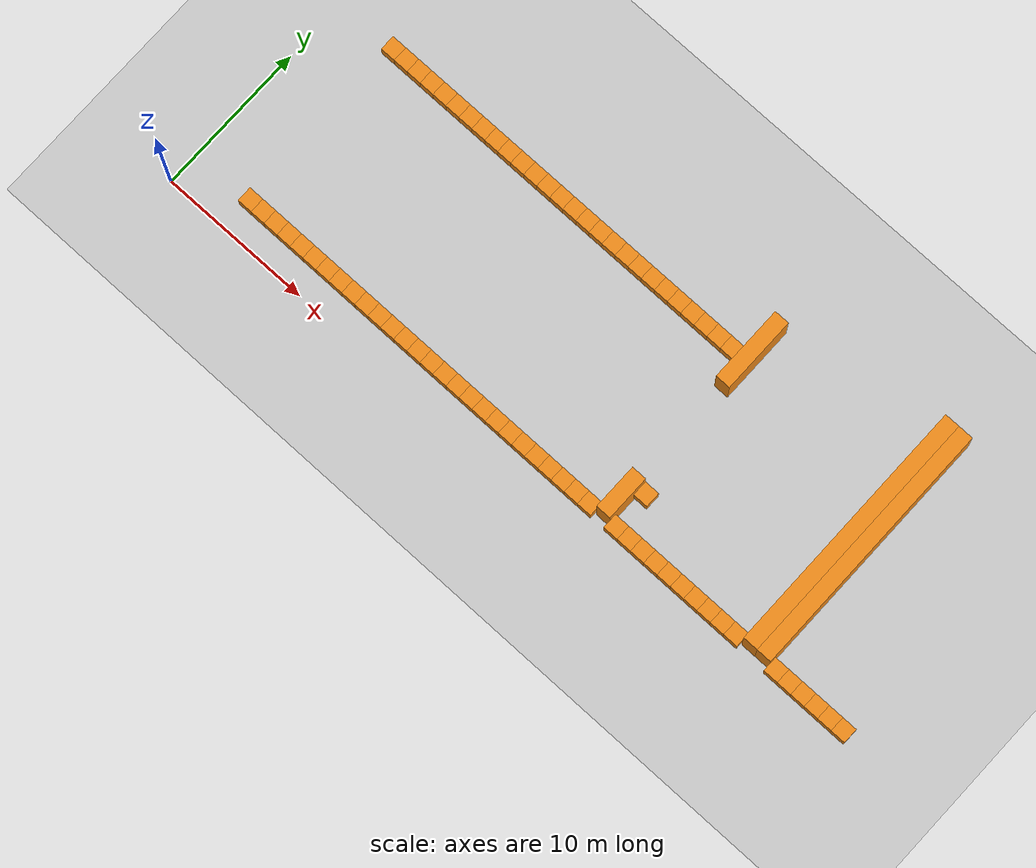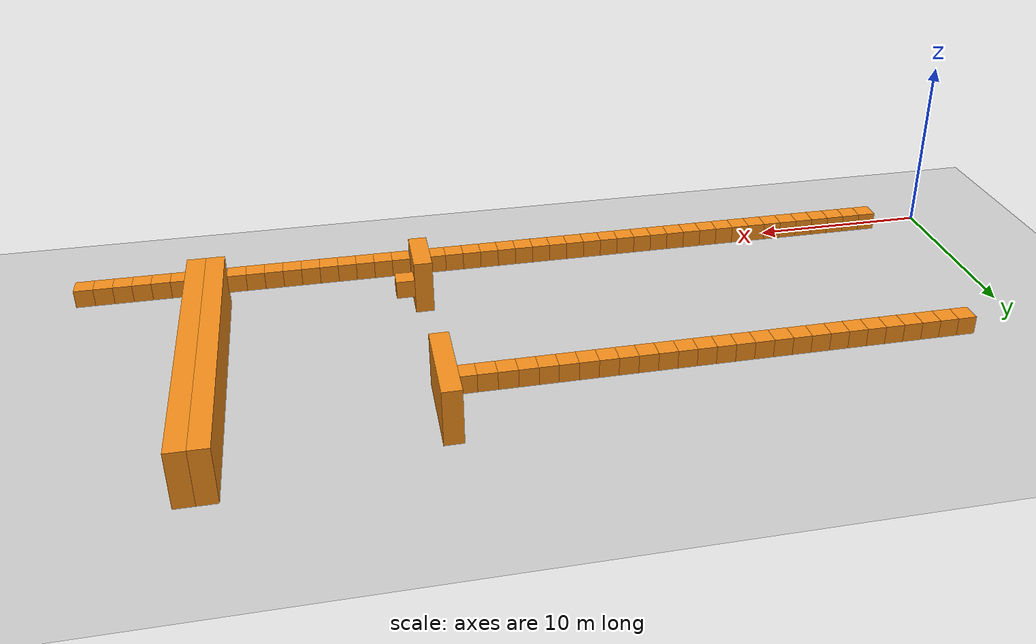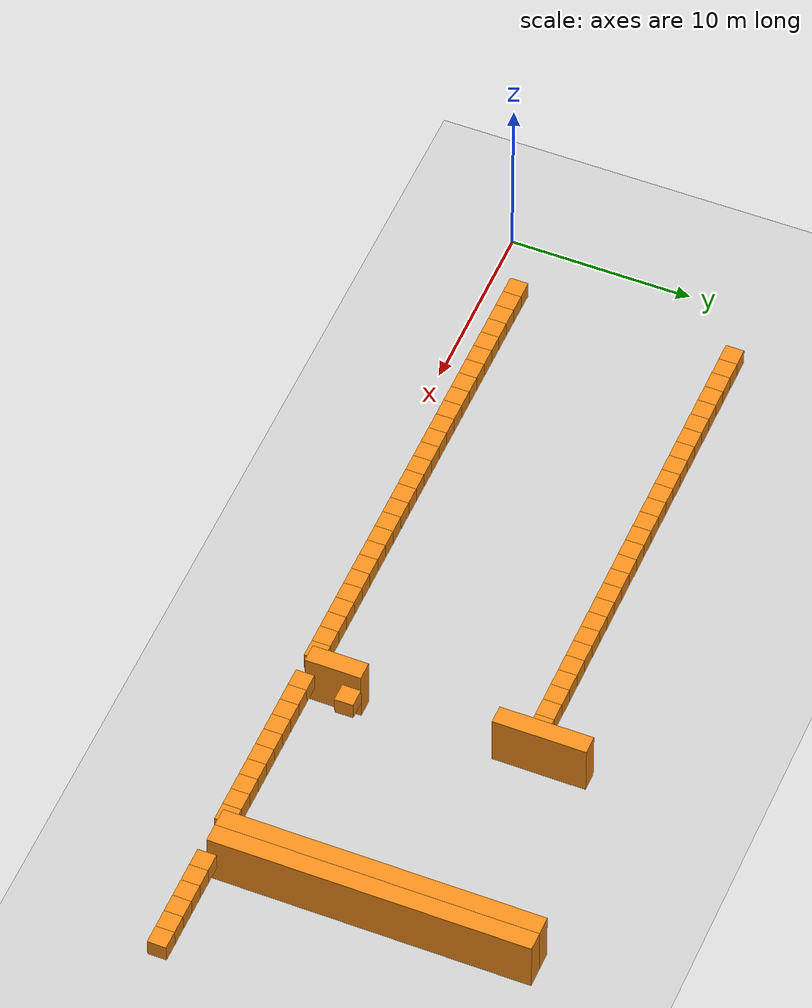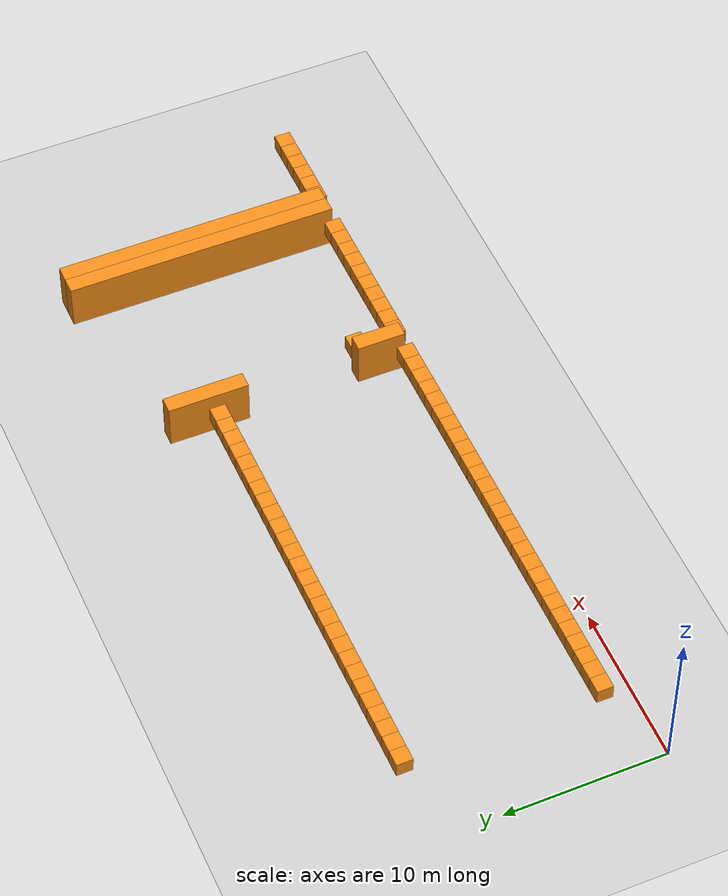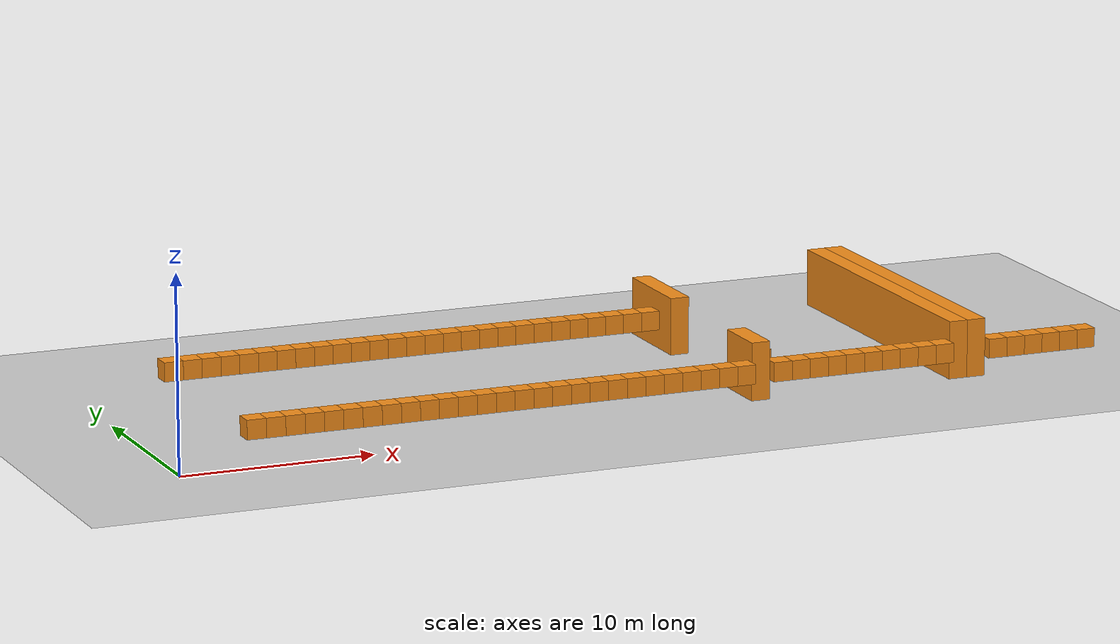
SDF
<sdf version="1.6">
 <world name="default">
  <include><uri>model://ground_plane</uri></include>
  <model name="unit_box_002">
   <pose>4.50     2.00     1.50 0 0 0</pose>
   <static>1</static>
   <link name="link">
    <inertial>
     <mass>5000</mass>
     <inertia><ixx>200</ixx><ixy>0</ixy><ixz>0</ixz><iyy>200</iyy><iyz>0</iyz><izz>200</izz></inertia>
    </inertial>
    <collision name="collision"><geometry><box><size>1 1 1</size></box></geometry></collision>
    <visual name="visual">
     <geometry><box><size>1 1 1</size></box></geometry>
     <material>
      <script><name>Gazebo/Orange</name><uri>file://media/materials/scripts/gazebo.material</uri></script>
     </material>
    </visual>
   </link>
  </model>
  <model name="unit_box_003">
   <pose>4.50    14.00     1.50 0 0 0</pose>
   <static>1</static>
   <link name="link">
    <inertial>
     <mass>5000</mass>
     <inertia><ixx>200</ixx><ixy>0</ixy><ixz>0</ixz><iyy>200</iyy><iyz>0</iyz><izz>200</izz></inertia>
    </inertial>
    <collision name="collision"><geometry><box><size>1 1 1</size></box></geometry></collision>
    <visual name="visual">
     <geometry><box><size>1 1 1</size></box></geometry>
     <material>
      <script><name>Gazebo/Orange</name><uri>file://media/materials/scripts/gazebo.material</uri></script>
     </material>
    </visual>
   </link>
  </model>
  <model name="unit_box_015">
   <pose>5.50     2.00     1.50 0 0 0</pose>
   <static>1</static>
   <link name="link">
    <inertial>
     <mass>5000</mass>
     <inertia><ixx>200</ixx><ixy>0</ixy><ixz>0</ixz><iyy>200</iyy><iyz>0</iyz><izz>200</izz></inertia>
    </inertial>
    <collision name="collision"><geometry><box><size>1 1 1</size></box></geometry></collision>
    <visual name="visual">
     <geometry><box><size>1 1 1</size></box></geometry>
     <material>
      <script><name>Gazebo/Orange</name><uri>file://media/materials/scripts/gazebo.material</uri></script>
     </material>
    </visual>
   </link>
  </model>
  <model name="unit_box_016">
   <pose>5.50    14.00     1.50 0 0 0</pose>
   <static>1</static>
   <link name="link">
    <inertial>
     <mass>5000</mass>
     <inertia><ixx>200</ixx><ixy>0</ixy><ixz>0</ixz><iyy>200</iyy><iyz>0</iyz><izz>200</izz></inertia>
    </inertial>
    <collision name="collision"><geometry><box><size>1 1 1</size></box></geometry></collision>
    <visual name="visual">
     <geometry><box><size>1 1 1</size></box></geometry>
     <material>
      <script><name>Gazebo/Orange</name><uri>file://media/materials/scripts/gazebo.material</uri></script>
     </material>
    </visual>
   </link>
  </model>
  <model name="unit_box_028">
   <pose>6.50     2.00     1.50 0 0 0</pose>
   <static>1</static>
   <link name="link">
    <inertial>
     <mass>5000</mass>
     <inertia><ixx>200</ixx><ixy>0</ixy><ixz>0</ixz><iyy>200</iyy><iyz>0</iyz><izz>200</izz></inertia>
    </inertial>
    <collision name="collision"><geometry><box><size>1 1 1</size></box></geometry></collision>
    <visual name="visual">
     <geometry><box><size>1 1 1</size></box></geometry>
     <material>
      <script><name>Gazebo/Orange</name><uri>file://media/materials/scripts/gazebo.material</uri></script>
     </material>
    </visual>
   </link>
  </model>
  <model name="unit_box_029">
   <pose>6.50    14.00     1.50 0 0 0</pose>
   <static>1</static>
   <link name="link">
    <inertial>
     <mass>5000</mass>
     <inertia><ixx>200</ixx><ixy>0</ixy><ixz>0</ixz><iyy>200</iyy><iyz>0</iyz><izz>200</izz></inertia>
    </inertial>
    <collision name="collision"><geometry><box><size>1 1 1</size></box></geometry></collision>
    <visual name="visual">
     <geometry><box><size>1 1 1</size></box></geometry>
     <material>
      <script><name>Gazebo/Orange</name><uri>file://media/materials/scripts/gazebo.material</uri></script>
     </material>
    </visual>
   </link>
  </model>
  <model name="unit_box_041">
   <pose>7.50     2.00     1.50 0 0 0</pose>
   <static>1</static>
   <link name="link">
    <inertial>
     <mass>5000</mass>
     <inertia><ixx>200</ixx><ixy>0</ixy><ixz>0</ixz><iyy>200</iyy><iyz>0</iyz><izz>200</izz></inertia>
    </inertial>
    <collision name="collision"><geometry><box><size>1 1 1</size></box></geometry></collision>
    <visual name="visual">
     <geometry><box><size>1 1 1</size></box></geometry>
     <material>
      <script><name>Gazebo/Orange</name><uri>file://media/materials/scripts/gazebo.material</uri></script>
     </material>
    </visual>
   </link>
  </model>
  <model name="unit_box_042">
   <pose>7.50    14.00     1.50 0 0 0</pose>
   <static>1</static>
   <link name="link">
    <inertial>
     <mass>5000</mass>
     <inertia><ixx>200</ixx><ixy>0</ixy><ixz>0</ixz><iyy>200</iyy><iyz>0</iyz><izz>200</izz></inertia>
    </inertial>
    <collision name="collision"><geometry><box><size>1 1 1</size></box></geometry></collision>
    <visual name="visual">
     <geometry><box><size>1 1 1</size></box></geometry>
     <material>
      <script><name>Gazebo/Orange</name><uri>file://media/materials/scripts/gazebo.material</uri></script>
     </material>
    </visual>
   </link>
  </model>
  <model name="unit_box_054">
   <pose>8.50     2.00     1.50 0 0 0</pose>
   <static>1</static>
   <link name="link">
    <inertial>
     <mass>5000</mass>
     <inertia><ixx>200</ixx><ixy>0</ixy><ixz>0</ixz><iyy>200</iyy><iyz>0</iyz><izz>200</izz></inertia>
    </inertial>
    <collision name="collision"><geometry><box><size>1 1 1</size></box></geometry></collision>
    <visual name="visual">
     <geometry><box><size>1 1 1</size></box></geometry>
     <material>
      <script><name>Gazebo/Orange</name><uri>file://media/materials/scripts/gazebo.material</uri></script>
     </material>
    </visual>
   </link>
  </model>
  <model name="unit_box_055">
   <pose>8.50    14.00     1.50 0 0 0</pose>
   <static>1</static>
   <link name="link">
    <inertial>
     <mass>5000</mass>
     <inertia><ixx>200</ixx><ixy>0</ixy><ixz>0</ixz><iyy>200</iyy><iyz>0</iyz><izz>200</izz></inertia>
    </inertial>
    <collision name="collision"><geometry><box><size>1 1 1</size></box></geometry></collision>
    <visual name="visual">
     <geometry><box><size>1 1 1</size></box></geometry>
     <material>
      <script><name>Gazebo/Orange</name><uri>file://media/materials/scripts/gazebo.material</uri></script>
     </material>
    </visual>
   </link>
  </model>
  <model name="unit_box_067">
   <pose>9.50     2.00     1.50 0 0 0</pose>
   <static>1</static>
   <link name="link">
    <inertial>
     <mass>5000</mass>
     <inertia><ixx>200</ixx><ixy>0</ixy><ixz>0</ixz><iyy>200</iyy><iyz>0</iyz><izz>200</izz></inertia>
    </inertial>
    <collision name="collision"><geometry><box><size>1 1 1</size></box></geometry></collision>
    <visual name="visual">
     <geometry><box><size>1 1 1</size></box></geometry>
     <material>
      <script><name>Gazebo/Orange</name><uri>file://media/materials/scripts/gazebo.material</uri></script>
     </material>
    </visual>
   </link>
  </model>
  <model name="unit_box_068">
   <pose>9.50    14.00     1.50 0 0 0</pose>
   <static>1</static>
   <link name="link">
    <inertial>
     <mass>5000</mass>
     <inertia><ixx>200</ixx><ixy>0</ixy><ixz>0</ixz><iyy>200</iyy><iyz>0</iyz><izz>200</izz></inertia>
    </inertial>
    <collision name="collision"><geometry><box><size>1 1 1</size></box></geometry></collision>
    <visual name="visual">
     <geometry><box><size>1 1 1</size></box></geometry>
     <material>
      <script><name>Gazebo/Orange</name><uri>file://media/materials/scripts/gazebo.material</uri></script>
     </material>
    </visual>
   </link>
  </model>
  <model name="unit_box_080">
   <pose>10.50     2.00     1.50 0 0 0</pose>
   <static>1</static>
   <link name="link">
    <inertial>
     <mass>5000</mass>
     <inertia><ixx>200</ixx><ixy>0</ixy><ixz>0</ixz><iyy>200</iyy><iyz>0</iyz><izz>200</izz></inertia>
    </inertial>
    <collision name="collision"><geometry><box><size>1 1 1</size></box></geometry></collision>
    <visual name="visual">
     <geometry><box><size>1 1 1</size></box></geometry>
     <material>
      <script><name>Gazebo/Orange</name><uri>file://media/materials/scripts/gazebo.material</uri></script>
     </material>
    </visual>
   </link>
  </model>
  <model name="unit_box_081">
   <pose>10.50    14.00     1.50 0 0 0</pose>
   <static>1</static>
   <link name="link">
    <inertial>
     <mass>5000</mass>
     <inertia><ixx>200</ixx><ixy>0</ixy><ixz>0</ixz><iyy>200</iyy><iyz>0</iyz><izz>200</izz></inertia>
    </inertial>
    <collision name="collision"><geometry><box><size>1 1 1</size></box></geometry></collision>
    <visual name="visual">
     <geometry><box><size>1 1 1</size></box></geometry>
     <material>
      <script><name>Gazebo/Orange</name><uri>file://media/materials/scripts/gazebo.material</uri></script>
     </material>
    </visual>
   </link>
  </model>
  <model name="unit_box_093">
   <pose>11.50     2.00     1.50 0 0 0</pose>
   <static>1</static>
   <link name="link">
    <inertial>
     <mass>5000</mass>
     <inertia><ixx>200</ixx><ixy>0</ixy><ixz>0</ixz><iyy>200</iyy><iyz>0</iyz><izz>200</izz></inertia>
    </inertial>
    <collision name="collision"><geometry><box><size>1 1 1</size></box></geometry></collision>
    <visual name="visual">
     <geometry><box><size>1 1 1</size></box></geometry>
     <material>
      <script><name>Gazebo/Orange</name><uri>file://media/materials/scripts/gazebo.material</uri></script>
     </material>
    </visual>
   </link>
  </model>
  <model name="unit_box_094">
   <pose>11.50    14.00     1.50 0 0 0</pose>
   <static>1</static>
   <link name="link">
    <inertial>
     <mass>5000</mass>
     <inertia><ixx>200</ixx><ixy>0</ixy><ixz>0</ixz><iyy>200</iyy><iyz>0</iyz><izz>200</izz></inertia>
    </inertial>
    <collision name="collision"><geometry><box><size>1 1 1</size></box></geometry></collision>
    <visual name="visual">
     <geometry><box><size>1 1 1</size></box></geometry>
     <material>
      <script><name>Gazebo/Orange</name><uri>file://media/materials/scripts/gazebo.material</uri></script>
     </material>
    </visual>
   </link>
  </model>
  <model name="unit_box_106">
   <pose>12.50     2.00     1.50 0 0 0</pose>
   <static>1</static>
   <link name="link">
    <inertial>
     <mass>5000</mass>
     <inertia><ixx>200</ixx><ixy>0</ixy><ixz>0</ixz><iyy>200</iyy><iyz>0</iyz><izz>200</izz></inertia>
    </inertial>
    <collision name="collision"><geometry><box><size>1 1 1</size></box></geometry></collision>
    <visual name="visual">
     <geometry><box><size>1 1 1</size></box></geometry>
     <material>
      <script><name>Gazebo/Orange</name><uri>file://media/materials/scripts/gazebo.material</uri></script>
     </material>
    </visual>
   </link>
  </model>
  <model name="unit_box_107">
   <pose>12.50    14.00     1.50 0 0 0</pose>
   <static>1</static>
   <link name="link">
    <inertial>
     <mass>5000</mass>
     <inertia><ixx>200</ixx><ixy>0</ixy><ixz>0</ixz><iyy>200</iyy><iyz>0</iyz><izz>200</izz></inertia>
    </inertial>
    <collision name="collision"><geometry><box><size>1 1 1</size></box></geometry></collision>
    <visual name="visual">
     <geometry><box><size>1 1 1</size></box></geometry>
     <material>
      <script><name>Gazebo/Orange</name><uri>file://media/materials/scripts/gazebo.material</uri></script>
     </material>
    </visual>
   </link>
  </model>
  <model name="unit_box_119">
   <pose>13.50     2.00     1.50 0 0 0</pose>
   <static>1</static>
   <link name="link">
    <inertial>
     <mass>5000</mass>
     <inertia><ixx>200</ixx><ixy>0</ixy><ixz>0</ixz><iyy>200</iyy><iyz>0</iyz><izz>200</izz></inertia>
    </inertial>
    <collision name="collision"><geometry><box><size>1 1 1</size></box></geometry></collision>
    <visual name="visual">
     <geometry><box><size>1 1 1</size></box></geometry>
     <material>
      <script><name>Gazebo/Orange</name><uri>file://media/materials/scripts/gazebo.material</uri></script>
     </material>
    </visual>
   </link>
  </model>
  <model name="unit_box_120">
   <pose>13.50    14.00     1.50 0 0 0</pose>
   <static>1</static>
   <link name="link">
    <inertial>
     <mass>5000</mass>
     <inertia><ixx>200</ixx><ixy>0</ixy><ixz>0</ixz><iyy>200</iyy><iyz>0</iyz><izz>200</izz></inertia>
    </inertial>
    <collision name="collision"><geometry><box><size>1 1 1</size></box></geometry></collision>
    <visual name="visual">
     <geometry><box><size>1 1 1</size></box></geometry>
     <material>
      <script><name>Gazebo/Orange</name><uri>file://media/materials/scripts/gazebo.material</uri></script>
     </material>
    </visual>
   </link>
  </model>
  <model name="unit_box_132">
   <pose>14.50     2.00     1.50 0 0 0</pose>
   <static>1</static>
   <link name="link">
    <inertial>
     <mass>5000</mass>
     <inertia><ixx>200</ixx><ixy>0</ixy><ixz>0</ixz><iyy>200</iyy><iyz>0</iyz><izz>200</izz></inertia>
    </inertial>
    <collision name="collision"><geometry><box><size>1 1 1</size></box></geometry></collision>
    <visual name="visual">
     <geometry><box><size>1 1 1</size></box></geometry>
     <material>
      <script><name>Gazebo/Orange</name><uri>file://media/materials/scripts/gazebo.material</uri></script>
     </material>
    </visual>
   </link>
  </model>
  <model name="unit_box_133">
   <pose>14.50    14.00     1.50 0 0 0</pose>
   <static>1</static>
   <link name="link">
    <inertial>
     <mass>5000</mass>
     <inertia><ixx>200</ixx><ixy>0</ixy><ixz>0</ixz><iyy>200</iyy><iyz>0</iyz><izz>200</izz></inertia>
    </inertial>
    <collision name="collision"><geometry><box><size>1 1 1</size></box></geometry></collision>
    <visual name="visual">
     <geometry><box><size>1 1 1</size></box></geometry>
     <material>
      <script><name>Gazebo/Orange</name><uri>file://media/materials/scripts/gazebo.material</uri></script>
     </material>
    </visual>
   </link>
  </model>
  <model name="unit_box_145">
   <pose>15.50     2.00     1.50 0 0 0</pose>
   <static>1</static>
   <link name="link">
    <inertial>
     <mass>5000</mass>
     <inertia><ixx>200</ixx><ixy>0</ixy><ixz>0</ixz><iyy>200</iyy><iyz>0</iyz><izz>200</izz></inertia>
    </inertial>
    <collision name="collision"><geometry><box><size>1 1 1</size></box></geometry></collision>
    <visual name="visual">
     <geometry><box><size>1 1 1</size></box></geometry>
     <material>
      <script><name>Gazebo/Orange</name><uri>file://media/materials/scripts/gazebo.material</uri></script>
     </material>
    </visual>
   </link>
  </model>
  <model name="unit_box_146">
   <pose>15.50    14.00     1.50 0 0 0</pose>
   <static>1</static>
   <link name="link">
    <inertial>
     <mass>5000</mass>
     <inertia><ixx>200</ixx><ixy>0</ixy><ixz>0</ixz><iyy>200</iyy><iyz>0</iyz><izz>200</izz></inertia>
    </inertial>
    <collision name="collision"><geometry><box><size>1 1 1</size></box></geometry></collision>
    <visual name="visual">
     <geometry><box><size>1 1 1</size></box></geometry>
     <material>
      <script><name>Gazebo/Orange</name><uri>file://media/materials/scripts/gazebo.material</uri></script>
     </material>
    </visual>
   </link>
  </model>
  <model name="unit_box_158">
   <pose>16.50     2.00     1.50 0 0 0</pose>
   <static>1</static>
   <link name="link">
    <inertial>
     <mass>5000</mass>
     <inertia><ixx>200</ixx><ixy>0</ixy><ixz>0</ixz><iyy>200</iyy><iyz>0</iyz><izz>200</izz></inertia>
    </inertial>
    <collision name="collision"><geometry><box><size>1 1 1</size></box></geometry></collision>
    <visual name="visual">
     <geometry><box><size>1 1 1</size></box></geometry>
     <material>
      <script><name>Gazebo/Orange</name><uri>file://media/materials/scripts/gazebo.material</uri></script>
     </material>
    </visual>
   </link>
  </model>
  <model name="unit_box_159">
   <pose>16.50    14.00     1.50 0 0 0</pose>
   <static>1</static>
   <link name="link">
    <inertial>
     <mass>5000</mass>
     <inertia><ixx>200</ixx><ixy>0</ixy><ixz>0</ixz><iyy>200</iyy><iyz>0</iyz><izz>200</izz></inertia>
    </inertial>
    <collision name="collision"><geometry><box><size>1 1 1</size></box></geometry></collision>
    <visual name="visual">
     <geometry><box><size>1 1 1</size></box></geometry>
     <material>
      <script><name>Gazebo/Orange</name><uri>file://media/materials/scripts/gazebo.material</uri></script>
     </material>
    </visual>
   </link>
  </model>
  <model name="unit_box_171">
   <pose>17.50     2.00     1.50 0 0 0</pose>
   <static>1</static>
   <link name="link">
    <inertial>
     <mass>5000</mass>
     <inertia><ixx>200</ixx><ixy>0</ixy><ixz>0</ixz><iyy>200</iyy><iyz>0</iyz><izz>200</izz></inertia>
    </inertial>
    <collision name="collision"><geometry><box><size>1 1 1</size></box></geometry></collision>
    <visual name="visual">
     <geometry><box><size>1 1 1</size></box></geometry>
     <material>
      <script><name>Gazebo/Orange</name><uri>file://media/materials/scripts/gazebo.material</uri></script>
     </material>
    </visual>
   </link>
  </model>
  <model name="unit_box_172">
   <pose>17.50    14.00     1.50 0 0 0</pose>
   <static>1</static>
   <link name="link">
    <inertial>
     <mass>5000</mass>
     <inertia><ixx>200</ixx><ixy>0</ixy><ixz>0</ixz><iyy>200</iyy><iyz>0</iyz><izz>200</izz></inertia>
    </inertial>
    <collision name="collision"><geometry><box><size>1 1 1</size></box></geometry></collision>
    <visual name="visual">
     <geometry><box><size>1 1 1</size></box></geometry>
     <material>
      <script><name>Gazebo/Orange</name><uri>file://media/materials/scripts/gazebo.material</uri></script>
     </material>
    </visual>
   </link>
  </model>
  <model name="unit_box_184">
   <pose>18.50     2.00     1.50 0 0 0</pose>
   <static>1</static>
   <link name="link">
    <inertial>
     <mass>5000</mass>
     <inertia><ixx>200</ixx><ixy>0</ixy><ixz>0</ixz><iyy>200</iyy><iyz>0</iyz><izz>200</izz></inertia>
    </inertial>
    <collision name="collision"><geometry><box><size>1 1 1</size></box></geometry></collision>
    <visual name="visual">
     <geometry><box><size>1 1 1</size></box></geometry>
     <material>
      <script><name>Gazebo/Orange</name><uri>file://media/materials/scripts/gazebo.material</uri></script>
     </material>
    </visual>
   </link>
  </model>
  <model name="unit_box_185">
   <pose>18.50    14.00     1.50 0 0 0</pose>
   <static>1</static>
   <link name="link">
    <inertial>
     <mass>5000</mass>
     <inertia><ixx>200</ixx><ixy>0</ixy><ixz>0</ixz><iyy>200</iyy><iyz>0</iyz><izz>200</izz></inertia>
    </inertial>
    <collision name="collision"><geometry><box><size>1 1 1</size></box></geometry></collision>
    <visual name="visual">
     <geometry><box><size>1 1 1</size></box></geometry>
     <material>
      <script><name>Gazebo/Orange</name><uri>file://media/materials/scripts/gazebo.material</uri></script>
     </material>
    </visual>
   </link>
  </model>
  <model name="unit_box_197">
   <pose>19.50     2.00     1.50 0 0 0</pose>
   <static>1</static>
   <link name="link">
    <inertial>
     <mass>5000</mass>
     <inertia><ixx>200</ixx><ixy>0</ixy><ixz>0</ixz><iyy>200</iyy><iyz>0</iyz><izz>200</izz></inertia>
    </inertial>
    <collision name="collision"><geometry><box><size>1 1 1</size></box></geometry></collision>
    <visual name="visual">
     <geometry><box><size>1 1 1</size></box></geometry>
     <material>
      <script><name>Gazebo/Orange</name><uri>file://media/materials/scripts/gazebo.material</uri></script>
     </material>
    </visual>
   </link>
  </model>
  <model name="unit_box_198">
   <pose>19.50    14.00     1.50 0 0 0</pose>
   <static>1</static>
   <link name="link">
    <inertial>
     <mass>5000</mass>
     <inertia><ixx>200</ixx><ixy>0</ixy><ixz>0</ixz><iyy>200</iyy><iyz>0</iyz><izz>200</izz></inertia>
    </inertial>
    <collision name="collision"><geometry><box><size>1 1 1</size></box></geometry></collision>
    <visual name="visual">
     <geometry><box><size>1 1 1</size></box></geometry>
     <material>
      <script><name>Gazebo/Orange</name><uri>file://media/materials/scripts/gazebo.material</uri></script>
     </material>
    </visual>
   </link>
  </model>
  <model name="unit_box_210">
   <pose>20.50     2.00     1.50 0 0 0</pose>
   <static>1</static>
   <link name="link">
    <inertial>
     <mass>5000</mass>
     <inertia><ixx>200</ixx><ixy>0</ixy><ixz>0</ixz><iyy>200</iyy><iyz>0</iyz><izz>200</izz></inertia>
    </inertial>
    <collision name="collision"><geometry><box><size>1 1 1</size></box></geometry></collision>
    <visual name="visual">
     <geometry><box><size>1 1 1</size></box></geometry>
     <material>
      <script><name>Gazebo/Orange</name><uri>file://media/materials/scripts/gazebo.material</uri></script>
     </material>
    </visual>
   </link>
  </model>
  <model name="unit_box_211">
   <pose>20.50    14.00     1.50 0 0 0</pose>
   <static>1</static>
   <link name="link">
    <inertial>
     <mass>5000</mass>
     <inertia><ixx>200</ixx><ixy>0</ixy><ixz>0</ixz><iyy>200</iyy><iyz>0</iyz><izz>200</izz></inertia>
    </inertial>
    <collision name="collision"><geometry><box><size>1 1 1</size></box></geometry></collision>
    <visual name="visual">
     <geometry><box><size>1 1 1</size></box></geometry>
     <material>
      <script><name>Gazebo/Orange</name><uri>file://media/materials/scripts/gazebo.material</uri></script>
     </material>
    </visual>
   </link>
  </model>
  <model name="unit_box_223">
   <pose>21.50     2.00     1.50 0 0 0</pose>
   <static>1</static>
   <link name="link">
    <inertial>
     <mass>5000</mass>
     <inertia><ixx>200</ixx><ixy>0</ixy><ixz>0</ixz><iyy>200</iyy><iyz>0</iyz><izz>200</izz></inertia>
    </inertial>
    <collision name="collision"><geometry><box><size>1 1 1</size></box></geometry></collision>
    <visual name="visual">
     <geometry><box><size>1 1 1</size></box></geometry>
     <material>
      <script><name>Gazebo/Orange</name><uri>file://media/materials/scripts/gazebo.material</uri></script>
     </material>
    </visual>
   </link>
  </model>
  <model name="unit_box_224">
   <pose>21.50    14.00     1.50 0 0 0</pose>
   <static>1</static>
   <link name="link">
    <inertial>
     <mass>5000</mass>
     <inertia><ixx>200</ixx><ixy>0</ixy><ixz>0</ixz><iyy>200</iyy><iyz>0</iyz><izz>200</izz></inertia>
    </inertial>
    <collision name="collision"><geometry><box><size>1 1 1</size></box></geometry></collision>
    <visual name="visual">
     <geometry><box><size>1 1 1</size></box></geometry>
     <material>
      <script><name>Gazebo/Orange</name><uri>file://media/materials/scripts/gazebo.material</uri></script>
     </material>
    </visual>
   </link>
  </model>
  <model name="unit_box_236">
   <pose>22.50     2.00     1.50 0 0 0</pose>
   <static>1</static>
   <link name="link">
    <inertial>
     <mass>5000</mass>
     <inertia><ixx>200</ixx><ixy>0</ixy><ixz>0</ixz><iyy>200</iyy><iyz>0</iyz><izz>200</izz></inertia>
    </inertial>
    <collision name="collision"><geometry><box><size>1 1 1</size></box></geometry></collision>
    <visual name="visual">
     <geometry><box><size>1 1 1</size></box></geometry>
     <material>
      <script><name>Gazebo/Orange</name><uri>file://media/materials/scripts/gazebo.material</uri></script>
     </material>
    </visual>
   </link>
  </model>
  <model name="unit_box_237">
   <pose>22.50    14.00     1.50 0 0 0</pose>
   <static>1</static>
   <link name="link">
    <inertial>
     <mass>5000</mass>
     <inertia><ixx>200</ixx><ixy>0</ixy><ixz>0</ixz><iyy>200</iyy><iyz>0</iyz><izz>200</izz></inertia>
    </inertial>
    <collision name="collision"><geometry><box><size>1 1 1</size></box></geometry></collision>
    <visual name="visual">
     <geometry><box><size>1 1 1</size></box></geometry>
     <material>
      <script><name>Gazebo/Orange</name><uri>file://media/materials/scripts/gazebo.material</uri></script>
     </material>
    </visual>
   </link>
  </model>
  <model name="unit_box_249">
   <pose>23.50     2.00     1.50 0 0 0</pose>
   <static>1</static>
   <link name="link">
    <inertial>
     <mass>5000</mass>
     <inertia><ixx>200</ixx><ixy>0</ixy><ixz>0</ixz><iyy>200</iyy><iyz>0</iyz><izz>200</izz></inertia>
    </inertial>
    <collision name="collision"><geometry><box><size>1 1 1</size></box></geometry></collision>
    <visual name="visual">
     <geometry><box><size>1 1 1</size></box></geometry>
     <material>
      <script><name>Gazebo/Orange</name><uri>file://media/materials/scripts/gazebo.material</uri></script>
     </material>
    </visual>
   </link>
  </model>
  <model name="unit_box_250">
   <pose>23.50    14.00     1.50 0 0 0</pose>
   <static>1</static>
   <link name="link">
    <inertial>
     <mass>5000</mass>
     <inertia><ixx>200</ixx><ixy>0</ixy><ixz>0</ixz><iyy>200</iyy><iyz>0</iyz><izz>200</izz></inertia>
    </inertial>
    <collision name="collision"><geometry><box><size>1 1 1</size></box></geometry></collision>
    <visual name="visual">
     <geometry><box><size>1 1 1</size></box></geometry>
     <material>
      <script><name>Gazebo/Orange</name><uri>file://media/materials/scripts/gazebo.material</uri></script>
     </material>
    </visual>
   </link>
  </model>
  <model name="unit_box_262">
   <pose>24.50     2.00     1.50 0 0 0</pose>
   <static>1</static>
   <link name="link">
    <inertial>
     <mass>5000</mass>
     <inertia><ixx>200</ixx><ixy>0</ixy><ixz>0</ixz><iyy>200</iyy><iyz>0</iyz><izz>200</izz></inertia>
    </inertial>
    <collision name="collision"><geometry><box><size>1 1 1</size></box></geometry></collision>
    <visual name="visual">
     <geometry><box><size>1 1 1</size></box></geometry>
     <material>
      <script><name>Gazebo/Orange</name><uri>file://media/materials/scripts/gazebo.material</uri></script>
     </material>
    </visual>
   </link>
  </model>
  <model name="unit_box_263">
   <pose>24.50    14.00     1.50 0 0 0</pose>
   <static>1</static>
   <link name="link">
    <inertial>
     <mass>5000</mass>
     <inertia><ixx>200</ixx><ixy>0</ixy><ixz>0</ixz><iyy>200</iyy><iyz>0</iyz><izz>200</izz></inertia>
    </inertial>
    <collision name="collision"><geometry><box><size>1 1 1</size></box></geometry></collision>
    <visual name="visual">
     <geometry><box><size>1 1 1</size></box></geometry>
     <material>
      <script><name>Gazebo/Orange</name><uri>file://media/materials/scripts/gazebo.material</uri></script>
     </material>
    </visual>
   </link>
  </model>
  <model name="unit_box_275">
   <pose>25.50     2.00     1.50 0 0 0</pose>
   <static>1</static>
   <link name="link">
    <inertial>
     <mass>5000</mass>
     <inertia><ixx>200</ixx><ixy>0</ixy><ixz>0</ixz><iyy>200</iyy><iyz>0</iyz><izz>200</izz></inertia>
    </inertial>
    <collision name="collision"><geometry><box><size>1 1 1</size></box></geometry></collision>
    <visual name="visual">
     <geometry><box><size>1 1 1</size></box></geometry>
     <material>
      <script><name>Gazebo/Orange</name><uri>file://media/materials/scripts/gazebo.material</uri></script>
     </material>
    </visual>
   </link>
  </model>
  <model name="unit_box_276">
   <pose>25.50    14.00     1.50 0 0 0</pose>
   <static>1</static>
   <link name="link">
    <inertial>
     <mass>5000</mass>
     <inertia><ixx>200</ixx><ixy>0</ixy><ixz>0</ixz><iyy>200</iyy><iyz>0</iyz><izz>200</izz></inertia>
    </inertial>
    <collision name="collision"><geometry><box><size>1 1 1</size></box></geometry></collision>
    <visual name="visual">
     <geometry><box><size>1 1 1</size></box></geometry>
     <material>
      <script><name>Gazebo/Orange</name><uri>file://media/materials/scripts/gazebo.material</uri></script>
     </material>
    </visual>
   </link>
  </model>
  <model name="unit_box_288">
   <pose>26.50     2.00     1.50 0 0 0</pose>
   <static>1</static>
   <link name="link">
    <inertial>
     <mass>5000</mass>
     <inertia><ixx>200</ixx><ixy>0</ixy><ixz>0</ixz><iyy>200</iyy><iyz>0</iyz><izz>200</izz></inertia>
    </inertial>
    <collision name="collision"><geometry><box><size>1 1 1</size></box></geometry></collision>
    <visual name="visual">
     <geometry><box><size>1 1 1</size></box></geometry>
     <material>
      <script><name>Gazebo/Orange</name><uri>file://media/materials/scripts/gazebo.material</uri></script>
     </material>
    </visual>
   </link>
  </model>
  <model name="unit_box_289">
   <pose>26.50    14.00     1.50 0 0 0</pose>
   <static>1</static>
   <link name="link">
    <inertial>
     <mass>5000</mass>
     <inertia><ixx>200</ixx><ixy>0</ixy><ixz>0</ixz><iyy>200</iyy><iyz>0</iyz><izz>200</izz></inertia>
    </inertial>
    <collision name="collision"><geometry><box><size>1 1 1</size></box></geometry></collision>
    <visual name="visual">
     <geometry><box><size>1 1 1</size></box></geometry>
     <material>
      <script><name>Gazebo/Orange</name><uri>file://media/materials/scripts/gazebo.material</uri></script>
     </material>
    </visual>
   </link>
  </model>
  <model name="unit_box_301">
   <pose>27.50     2.00     1.50 0 0 0</pose>
   <static>1</static>
   <link name="link">
    <inertial>
     <mass>5000</mass>
     <inertia><ixx>200</ixx><ixy>0</ixy><ixz>0</ixz><iyy>200</iyy><iyz>0</iyz><izz>200</izz></inertia>
    </inertial>
    <collision name="collision"><geometry><box><size>1 1 1</size></box></geometry></collision>
    <visual name="visual">
     <geometry><box><size>1 1 1</size></box></geometry>
     <material>
      <script><name>Gazebo/Orange</name><uri>file://media/materials/scripts/gazebo.material</uri></script>
     </material>
    </visual>
   </link>
  </model>
  <model name="unit_box_302">
   <pose>27.50    14.00     1.50 0 0 0</pose>
   <static>1</static>
   <link name="link">
    <inertial>
     <mass>5000</mass>
     <inertia><ixx>200</ixx><ixy>0</ixy><ixz>0</ixz><iyy>200</iyy><iyz>0</iyz><izz>200</izz></inertia>
    </inertial>
    <collision name="collision"><geometry><box><size>1 1 1</size></box></geometry></collision>
    <visual name="visual">
     <geometry><box><size>1 1 1</size></box></geometry>
     <material>
      <script><name>Gazebo/Orange</name><uri>file://media/materials/scripts/gazebo.material</uri></script>
     </material>
    </visual>
   </link>
  </model>
  <model name="unit_box_314">
   <pose>28.50     2.00     1.50 0 0 0</pose>
   <static>1</static>
   <link name="link">
    <inertial>
     <mass>5000</mass>
     <inertia><ixx>200</ixx><ixy>0</ixy><ixz>0</ixz><iyy>200</iyy><iyz>0</iyz><izz>200</izz></inertia>
    </inertial>
    <collision name="collision"><geometry><box><size>1 1 1</size></box></geometry></collision>
    <visual name="visual">
     <geometry><box><size>1 1 1</size></box></geometry>
     <material>
      <script><name>Gazebo/Orange</name><uri>file://media/materials/scripts/gazebo.material</uri></script>
     </material>
    </visual>
   </link>
  </model>
  <model name="unit_box_315">
   <pose>28.50    14.00     1.50 0 0 0</pose>
   <static>1</static>
   <link name="link">
    <inertial>
     <mass>5000</mass>
     <inertia><ixx>200</ixx><ixy>0</ixy><ixz>0</ixz><iyy>200</iyy><iyz>0</iyz><izz>200</izz></inertia>
    </inertial>
    <collision name="collision"><geometry><box><size>1 1 1</size></box></geometry></collision>
    <visual name="visual">
     <geometry><box><size>1 1 1</size></box></geometry>
     <material>
      <script><name>Gazebo/Orange</name><uri>file://media/materials/scripts/gazebo.material</uri></script>
     </material>
    </visual>
   </link>
  </model>
  <model name="unit_box_327">
   <pose>29.50     2.00     1.50 0 0 0</pose>
   <static>1</static>
   <link name="link">
    <inertial>
     <mass>5000</mass>
     <inertia><ixx>200</ixx><ixy>0</ixy><ixz>0</ixz><iyy>200</iyy><iyz>0</iyz><izz>200</izz></inertia>
    </inertial>
    <collision name="collision"><geometry><box><size>1 1 1</size></box></geometry></collision>
    <visual name="visual">
     <geometry><box><size>1 1 1</size></box></geometry>
     <material>
      <script><name>Gazebo/Orange</name><uri>file://media/materials/scripts/gazebo.material</uri></script>
     </material>
    </visual>
   </link>
  </model>
  <model name="unit_box_328">
   <pose>29.50    14.00     1.50 0 0 0</pose>
   <static>1</static>
   <link name="link">
    <inertial>
     <mass>5000</mass>
     <inertia><ixx>200</ixx><ixy>0</ixy><ixz>0</ixz><iyy>200</iyy><iyz>0</iyz><izz>200</izz></inertia>
    </inertial>
    <collision name="collision"><geometry><box><size>1 1 1</size></box></geometry></collision>
    <visual name="visual">
     <geometry><box><size>1 1 1</size></box></geometry>
     <material>
      <script><name>Gazebo/Orange</name><uri>file://media/materials/scripts/gazebo.material</uri></script>
     </material>
    </visual>
   </link>
  </model>
  <model name="unit_box_340">
   <pose>30.50     2.00     1.50 0 0 0</pose>
   <static>1</static>
   <link name="link">
    <inertial>
     <mass>5000</mass>
     <inertia><ixx>200</ixx><ixy>0</ixy><ixz>0</ixz><iyy>200</iyy><iyz>0</iyz><izz>200</izz></inertia>
    </inertial>
    <collision name="collision"><geometry><box><size>1 1 1</size></box></geometry></collision>
    <visual name="visual">
     <geometry><box><size>1 1 1</size></box></geometry>
     <material>
      <script><name>Gazebo/Orange</name><uri>file://media/materials/scripts/gazebo.material</uri></script>
     </material>
    </visual>
   </link>
  </model>
  <model name="unit_box_341">
   <pose>30.50    14.00     1.50 0 0 0</pose>
   <static>1</static>
   <link name="link">
    <inertial>
     <mass>5000</mass>
     <inertia><ixx>200</ixx><ixy>0</ixy><ixz>0</ixz><iyy>200</iyy><iyz>0</iyz><izz>200</izz></inertia>
    </inertial>
    <collision name="collision"><geometry><box><size>1 1 1</size></box></geometry></collision>
    <visual name="visual">
     <geometry><box><size>1 1 1</size></box></geometry>
     <material>
      <script><name>Gazebo/Orange</name><uri>file://media/materials/scripts/gazebo.material</uri></script>
     </material>
    </visual>
   </link>
  </model>
  <model name="unit_box_353">
   <pose>31.50     3.50     1.50 0 0 0</pose>
   <static>1</static>
   <link name="link">
    <inertial>
     <mass>5000</mass>
     <inertia><ixx>200</ixx><ixy>0</ixy><ixz>0</ixz><iyy>200</iyy><iyz>0</iyz><izz>200</izz></inertia>
    </inertial>
    <collision name="collision"><geometry><box><size>1 3 3</size></box></geometry></collision>
    <visual name="visual">
     <geometry><box><size>1 3 3</size></box></geometry>
     <material>
      <script><name>Gazebo/Orange</name><uri>file://media/materials/scripts/gazebo.material</uri></script>
     </material>
    </visual>
   </link>
  </model>
  <model name="unit_box_354">
   <pose>31.50    14.50     1.50 0 0 0</pose>
   <static>1</static>
   <link name="link">
    <inertial>
     <mass>5000</mass>
     <inertia><ixx>200</ixx><ixy>0</ixy><ixz>0</ixz><iyy>200</iyy><iyz>0</iyz><izz>200</izz></inertia>
    </inertial>
    <collision name="collision"><geometry><box><size>1 5 3</size></box></geometry></collision>
    <visual name="visual">
     <geometry><box><size>1 5 3</size></box></geometry>
     <material>
      <script><name>Gazebo/Orange</name><uri>file://media/materials/scripts/gazebo.material</uri></script>
     </material>
    </visual>
   </link>
  </model>
  <model name="unit_box_367">
   <pose>32.50     2.00     1.50 0 0 0</pose>
   <static>1</static>
   <link name="link">
    <inertial>
     <mass>5000</mass>
     <inertia><ixx>200</ixx><ixy>0</ixy><ixz>0</ixz><iyy>200</iyy><iyz>0</iyz><izz>200</izz></inertia>
    </inertial>
    <collision name="collision"><geometry><box><size>1 1 1</size></box></geometry></collision>
    <visual name="visual">
     <geometry><box><size>1 1 1</size></box></geometry>
     <material>
      <script><name>Gazebo/Orange</name><uri>file://media/materials/scripts/gazebo.material</uri></script>
     </material>
    </visual>
   </link>
  </model>
  <model name="unit_box_368">
   <pose>32.50     4.50     1.50 0 0 0</pose>
   <static>1</static>
   <link name="link">
    <inertial>
     <mass>5000</mass>
     <inertia><ixx>200</ixx><ixy>0</ixy><ixz>0</ixz><iyy>200</iyy><iyz>0</iyz><izz>200</izz></inertia>
    </inertial>
    <collision name="collision"><geometry><box><size>1 1 1</size></box></geometry></collision>
    <visual name="visual">
     <geometry><box><size>1 1 1</size></box></geometry>
     <material>
      <script><name>Gazebo/Orange</name><uri>file://media/materials/scripts/gazebo.material</uri></script>
     </material>
    </visual>
   </link>
  </model>
  <model name="unit_box_382">
   <pose>33.50     2.00     1.50 0 0 0</pose>
   <static>1</static>
   <link name="link">
    <inertial>
     <mass>5000</mass>
     <inertia><ixx>200</ixx><ixy>0</ixy><ixz>0</ixz><iyy>200</iyy><iyz>0</iyz><izz>200</izz></inertia>
    </inertial>
    <collision name="collision"><geometry><box><size>1 1 1</size></box></geometry></collision>
    <visual name="visual">
     <geometry><box><size>1 1 1</size></box></geometry>
     <material>
      <script><name>Gazebo/Orange</name><uri>file://media/materials/scripts/gazebo.material</uri></script>
     </material>
    </visual>
   </link>
  </model>
  <model name="unit_box_389">
   <pose>34.50     2.00     1.50 0 0 0</pose>
   <static>1</static>
   <link name="link">
    <inertial>
     <mass>5000</mass>
     <inertia><ixx>200</ixx><ixy>0</ixy><ixz>0</ixz><iyy>200</iyy><iyz>0</iyz><izz>200</izz></inertia>
    </inertial>
    <collision name="collision"><geometry><box><size>1 1 1</size></box></geometry></collision>
    <visual name="visual">
     <geometry><box><size>1 1 1</size></box></geometry>
     <material>
      <script><name>Gazebo/Orange</name><uri>file://media/materials/scripts/gazebo.material</uri></script>
     </material>
    </visual>
   </link>
  </model>
  <model name="unit_box_395">
   <pose>35.50     2.00     1.50 0 0 0</pose>
   <static>1</static>
   <link name="link">
    <inertial>
     <mass>5000</mass>
     <inertia><ixx>200</ixx><ixy>0</ixy><ixz>0</ixz><iyy>200</iyy><iyz>0</iyz><izz>200</izz></inertia>
    </inertial>
    <collision name="collision"><geometry><box><size>1 1 1</size></box></geometry></collision>
    <visual name="visual">
     <geometry><box><size>1 1 1</size></box></geometry>
     <material>
      <script><name>Gazebo/Orange</name><uri>file://media/materials/scripts/gazebo.material</uri></script>
     </material>
    </visual>
   </link>
  </model>
  <model name="unit_box_401">
   <pose>36.50     2.00     1.50 0 0 0</pose>
   <static>1</static>
   <link name="link">
    <inertial>
     <mass>5000</mass>
     <inertia><ixx>200</ixx><ixy>0</ixy><ixz>0</ixz><iyy>200</iyy><iyz>0</iyz><izz>200</izz></inertia>
    </inertial>
    <collision name="collision"><geometry><box><size>1 1 1</size></box></geometry></collision>
    <visual name="visual">
     <geometry><box><size>1 1 1</size></box></geometry>
     <material>
      <script><name>Gazebo/Orange</name><uri>file://media/materials/scripts/gazebo.material</uri></script>
     </material>
    </visual>
   </link>
  </model>
  <model name="unit_box_406">
   <pose>37.50     2.00     1.50 0 0 0</pose>
   <static>1</static>
   <link name="link">
    <inertial>
     <mass>5000</mass>
     <inertia><ixx>200</ixx><ixy>0</ixy><ixz>0</ixz><iyy>200</iyy><iyz>0</iyz><izz>200</izz></inertia>
    </inertial>
    <collision name="collision"><geometry><box><size>1 1 1</size></box></geometry></collision>
    <visual name="visual">
     <geometry><box><size>1 1 1</size></box></geometry>
     <material>
      <script><name>Gazebo/Orange</name><uri>file://media/materials/scripts/gazebo.material</uri></script>
     </material>
    </visual>
   </link>
  </model>
  <model name="unit_box_411">
   <pose>38.50     2.00     1.50 0 0 0</pose>
   <static>1</static>
   <link name="link">
    <inertial>
     <mass>5000</mass>
     <inertia><ixx>200</ixx><ixy>0</ixy><ixz>0</ixz><iyy>200</iyy><iyz>0</iyz><izz>200</izz></inertia>
    </inertial>
    <collision name="collision"><geometry><box><size>1 1 1</size></box></geometry></collision>
    <visual name="visual">
     <geometry><box><size>1 1 1</size></box></geometry>
     <material>
      <script><name>Gazebo/Orange</name><uri>file://media/materials/scripts/gazebo.material</uri></script>
     </material>
    </visual>
   </link>
  </model>
  <model name="unit_box_416">
   <pose>39.50     2.00     1.50 0 0 0</pose>
   <static>1</static>
   <link name="link">
    <inertial>
     <mass>5000</mass>
     <inertia><ixx>200</ixx><ixy>0</ixy><ixz>0</ixz><iyy>200</iyy><iyz>0</iyz><izz>200</izz></inertia>
    </inertial>
    <collision name="collision"><geometry><box><size>1 1 1</size></box></geometry></collision>
    <visual name="visual">
     <geometry><box><size>1 1 1</size></box></geometry>
     <material>
      <script><name>Gazebo/Orange</name><uri>file://media/materials/scripts/gazebo.material</uri></script>
     </material>
    </visual>
   </link>
  </model>
  <model name="unit_box_422">
   <pose>40.50     2.00     1.50 0 0 0</pose>
   <static>1</static>
   <link name="link">
    <inertial>
     <mass>5000</mass>
     <inertia><ixx>200</ixx><ixy>0</ixy><ixz>0</ixz><iyy>200</iyy><iyz>0</iyz><izz>200</izz></inertia>
    </inertial>
    <collision name="collision"><geometry><box><size>1 1 1</size></box></geometry></collision>
    <visual name="visual">
     <geometry><box><size>1 1 1</size></box></geometry>
     <material>
      <script><name>Gazebo/Orange</name><uri>file://media/materials/scripts/gazebo.material</uri></script>
     </material>
    </visual>
   </link>
  </model>
  <model name="unit_box_428">
   <pose>41.50     2.00     1.50 0 0 0</pose>
   <static>1</static>
   <link name="link">
    <inertial>
     <mass>5000</mass>
     <inertia><ixx>200</ixx><ixy>0</ixy><ixz>0</ixz><iyy>200</iyy><iyz>0</iyz><izz>200</izz></inertia>
    </inertial>
    <collision name="collision"><geometry><box><size>1 1 1</size></box></geometry></collision>
    <visual name="visual">
     <geometry><box><size>1 1 1</size></box></geometry>
     <material>
      <script><name>Gazebo/Orange</name><uri>file://media/materials/scripts/gazebo.material</uri></script>
     </material>
    </visual>
   </link>
  </model>
  <model name="unit_box_436">
   <pose>42.50    10.50     1.50 0 0 0</pose>
   <static>1</static>
   <link name="link">
    <inertial>
     <mass>5000</mass>
     <inertia><ixx>200</ixx><ixy>0</ixy><ixz>0</ixz><iyy>200</iyy><iyz>0</iyz><izz>200</izz></inertia>
    </inertial>
    <collision name="collision"><geometry><box><size>1 17 3</size></box></geometry></collision>
    <visual name="visual">
     <geometry><box><size>1 17 3</size></box></geometry>
     <material>
      <script><name>Gazebo/Orange</name><uri>file://media/materials/scripts/gazebo.material</uri></script>
     </material>
    </visual>
   </link>
  </model>
  <model name="unit_box_449">
   <pose>43.50    10.50     1.50 0 0 0</pose>
   <static>1</static>
   <link name="link">
    <inertial>
     <mass>5000</mass>
     <inertia><ixx>200</ixx><ixy>0</ixy><ixz>0</ixz><iyy>200</iyy><iyz>0</iyz><izz>200</izz></inertia>
    </inertial>
    <collision name="collision"><geometry><box><size>1 17 3</size></box></geometry></collision>
    <visual name="visual">
     <geometry><box><size>1 17 3</size></box></geometry>
     <material>
      <script><name>Gazebo/Orange</name><uri>file://media/materials/scripts/gazebo.material</uri></script>
     </material>
    </visual>
   </link>
  </model>
  <model name="unit_box_464">
   <pose>44.50     2.00     1.50 0 0 0</pose>
   <static>1</static>
   <link name="link">
    <inertial>
     <mass>5000</mass>
     <inertia><ixx>200</ixx><ixy>0</ixy><ixz>0</ixz><iyy>200</iyy><iyz>0</iyz><izz>200</izz></inertia>
    </inertial>
    <collision name="collision"><geometry><box><size>1 1 1</size></box></geometry></collision>
    <visual name="visual">
     <geometry><box><size>1 1 1</size></box></geometry>
     <material>
      <script><name>Gazebo/Orange</name><uri>file://media/materials/scripts/gazebo.material</uri></script>
     </material>
    </visual>
   </link>
  </model>
  <model name="unit_box_479">
   <pose>45.50     2.00     1.50 0 0 0</pose>
   <static>1</static>
   <link name="link">
    <inertial>
     <mass>5000</mass>
     <inertia><ixx>200</ixx><ixy>0</ixy><ixz>0</ixz><iyy>200</iyy><iyz>0</iyz><izz>200</izz></inertia>
    </inertial>
    <collision name="collision"><geometry><box><size>1 1 1</size></box></geometry></collision>
    <visual name="visual">
     <geometry><box><size>1 1 1</size></box></geometry>
     <material>
      <script><name>Gazebo/Orange</name><uri>file://media/materials/scripts/gazebo.material</uri></script>
     </material>
    </visual>
   </link>
  </model>
  <model name="unit_box_494">
   <pose>46.50     2.00     1.50 0 0 0</pose>
   <static>1</static>
   <link name="link">
    <inertial>
     <mass>5000</mass>
     <inertia><ixx>200</ixx><ixy>0</ixy><ixz>0</ixz><iyy>200</iyy><iyz>0</iyz><izz>200</izz></inertia>
    </inertial>
    <collision name="collision"><geometry><box><size>1 1 1</size></box></geometry></collision>
    <visual name="visual">
     <geometry><box><size>1 1 1</size></box></geometry>
     <material>
      <script><name>Gazebo/Orange</name><uri>file://media/materials/scripts/gazebo.material</uri></script>
     </material>
    </visual>
   </link>
  </model>
  <model name="unit_box_508">
   <pose>47.50     2.00     1.50 0 0 0</pose>
   <static>1</static>
   <link name="link">
    <inertial>
     <mass>5000</mass>
     <inertia><ixx>200</ixx><ixy>0</ixy><ixz>0</ixz><iyy>200</iyy><iyz>0</iyz><izz>200</izz></inertia>
    </inertial>
    <collision name="collision"><geometry><box><size>1 1 1</size></box></geometry></collision>
    <visual name="visual">
     <geometry><box><size>1 1 1</size></box></geometry>
     <material>
      <script><name>Gazebo/Orange</name><uri>file://media/materials/scripts/gazebo.material</uri></script>
     </material>
    </visual>
   </link>
  </model>
  <model name="unit_box_521">
   <pose>48.50     2.00     1.50 0 0 0</pose>
   <static>1</static>
   <link name="link">
    <inertial>
     <mass>5000</mass>
     <inertia><ixx>200</ixx><ixy>0</ixy><ixz>0</ixz><iyy>200</iyy><iyz>0</iyz><izz>200</izz></inertia>
    </inertial>
    <collision name="collision"><geometry><box><size>1 1 1</size></box></geometry></collision>
    <visual name="visual">
     <geometry><box><size>1 1 1</size></box></geometry>
     <material>
      <script><name>Gazebo/Orange</name><uri>file://media/materials/scripts/gazebo.material</uri></script>
     </material>
    </visual>
   </link>
  </model>
  <model name="unit_box_534">
   <pose>49.50     2.00     1.50 0 0 0</pose>
   <static>1</static>
   <link name="link">
    <inertial>
     <mass>5000</mass>
     <inertia><ixx>200</ixx><ixy>0</ixy><ixz>0</ixz><iyy>200</iyy><iyz>0</iyz><izz>200</izz></inertia>
    </inertial>
    <collision name="collision"><geometry><box><size>1 1 1</size></box></geometry></collision>
    <visual name="visual">
     <geometry><box><size>1 1 1</size></box></geometry>
     <material>
      <script><name>Gazebo/Orange</name><uri>file://media/materials/scripts/gazebo.material</uri></script>
     </material>
    </visual>
   </link>
  </model>
 </world>
</sdf>
